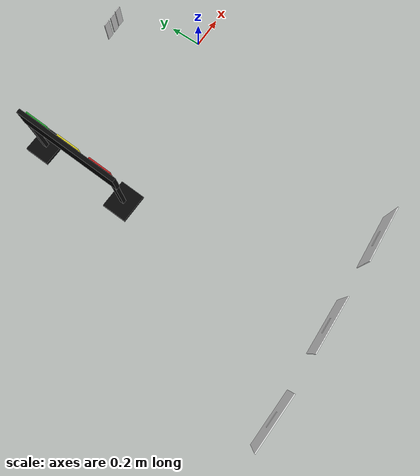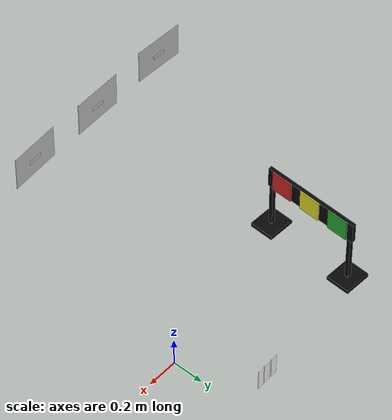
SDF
<sdf version="1.7">
 <world name="competition_world">
  <model name="traffic_light_1">
   <static>true</static>
   <pose>-1.110000 0.067000 0.035000 0 -0 1.527000</pose>
   <link name="signal">
    <visual name="lamp_housing">
     <pose>0 0 0.410 0 0 0</pose>
     <geometry><box><size>0.640 0.025 0.140</size></box></geometry>
     <material><ambient>0.015 0.015 0.015 1</ambient><diffuse>0.03 0.03 0.03 1</diffuse></material>
    </visual>
    <collision name="lamp_housing_collision">
     <pose>0 0 0.410 0 0 0</pose>
     <geometry><box><size>0.640 0.025 0.140</size></box></geometry>
    </collision>
    <visual name="left_support">
     <pose>-0.295 0 0.170 0 0 0</pose>
     <geometry><box><size>0.025 0.025 0.340</size></box></geometry>
     <material><ambient>0.015 0.015 0.015 1</ambient><diffuse>0.03 0.03 0.03 1</diffuse></material>
    </visual>
    <visual name="right_support">
     <pose>0.295 0 0.170 0 0 0</pose>
     <geometry><box><size>0.025 0.025 0.340</size></box></geometry>
     <material><ambient>0.015 0.015 0.015 1</ambient><diffuse>0.03 0.03 0.03 1</diffuse></material>
    </visual>
    <collision name="left_support_collision">
     <pose>-0.295 0 0.170 0 0 0</pose>
     <geometry><box><size>0.025 0.025 0.340</size></box></geometry>
    </collision>
    <collision name="right_support_collision">
     <pose>0.295 0 0.170 0 0 0</pose>
     <geometry><box><size>0.025 0.025 0.340</size></box></geometry>
    </collision>
    <visual name="left_foot">
     <pose>-0.295 0 0.0125 0 0 0</pose>
     <geometry><box><size>0.160 0.180 0.025</size></box></geometry>
     <material><ambient>0.015 0.015 0.015 1</ambient><diffuse>0.03 0.03 0.03 1</diffuse></material>
    </visual>
    <visual name="right_foot">
     <pose>0.295 0 0.0125 0 0 0</pose>
     <geometry><box><size>0.160 0.180 0.025</size></box></geometry>
     <material><ambient>0.015 0.015 0.015 1</ambient><diffuse>0.03 0.03 0.03 1</diffuse></material>
    </visual>
    <collision name="left_foot_collision">
     <pose>-0.295 0 0.0125 0 0 0</pose>
     <geometry><box><size>0.160 0.180 0.025</size></box></geometry>
    </collision>
    <collision name="right_foot_collision">
     <pose>0.295 0 0.0125 0 0 0</pose>
     <geometry><box><size>0.160 0.180 0.025</size></box></geometry>
    </collision>
    <visual name="red_lamp">
     <pose>-0.210 -0.018 0.410 0 0 0</pose>
     <geometry><box><size>0.140 0.008 0.140</size></box></geometry>
     <material>
      <script>
       <uri>file:///root/traffic_light/materials/scripts</uri>
       <uri>file:///root/traffic_light/materials/textures</uri>
       <name>TrafficLight/RedOn</name>
      </script>
     </material>
    </visual>
    <visual name="yellow_lamp">
     <pose>0 -0.018 0.410 0 0 0</pose>
     <geometry><box><size>0.140 0.008 0.140</size></box></geometry>
     <material>
      <script>
       <uri>file:///root/traffic_light/materials/scripts</uri>
       <uri>file:///root/traffic_light/materials/textures</uri>
       <name>TrafficLight/YellowOff</name>
      </script>
     </material>
    </visual>
    <visual name="green_lamp">
     <pose>0.210 -0.018 0.410 0 0 0</pose>
     <geometry><box><size>0.140 0.008 0.140</size></box></geometry>
     <material>
      <script>
       <uri>file:///root/traffic_light/materials/scripts</uri>
       <uri>file:///root/traffic_light/materials/textures</uri>
       <name>TrafficLight/GreenOff</name>
      </script>
     </material>
    </visual>
   </link>
  </model>
  <model name="person_standee_03">
   <pose>-0.284125268 0.484067470 0.035000000 0 0 0.000000000</pose>
   <static>1</static>
   <pose>-0.284125268 0.484067470 0.035000000 0 0 0.000000000</pose>
   <link name="standee">
    <visual name="standee_board">
     <pose>0 0 0.075 0 -0 0</pose>
     <geometry><box><size>0.045 0.005 0.15</size></box></geometry>
     <material><ambient>0.82 0.82 0.82 1</ambient><diffuse>0.92 0.92 0.92 1</diffuse></material>
    </visual>
    <visual name="person_image_front">
     <pose>0 -0.00255 0.075 0 -0 0</pose>
     <geometry><box><size>0.045 0.0001 0.15</size></box></geometry>
     <material>
      <script>
       <uri>file:///root/person_standees/materials/scripts</uri>
       <uri>file:///root/person_standees/materials/textures</uri>
       <name>PersonStandee/Person03</name>
      </script>
     </material>
    </visual>
    <collision name="collision">
     <pose>0 0 0.075 0 -0 0</pose>
     <geometry><box><size>0.045 0.005 0.15</size></box></geometry>
    </collision>
   </link>
  </model>
  <model name="person_standee_09">
   <pose>-0.223586217 0.484632939 0.035000000 0 0 0.000000000</pose>
   <static>1</static>
   <pose>-0.223586217 0.484632939 0.035000000 0 0 0.000000000</pose>
   <link name="standee">
    <visual name="standee_board">
     <pose>0 0 0.075 0 -0 0</pose>
     <geometry><box><size>0.045 0.005 0.15</size></box></geometry>
     <material><ambient>0.82 0.82 0.82 1</ambient><diffuse>0.92 0.92 0.92 1</diffuse></material>
    </visual>
    <visual name="person_image_front">
     <pose>0 -0.00255 0.075 0 -0 0</pose>
     <geometry><box><size>0.045 0.0001 0.15</size></box></geometry>
     <material>
      <script>
       <uri>file:///root/person_standees/materials/scripts</uri>
       <uri>file:///root/person_standees/materials/textures</uri>
       <name>PersonStandee/Person09</name>
      </script>
     </material>
    </visual>
    <collision name="collision">
     <pose>0 0 0.075 0 -0 0</pose>
     <geometry><box><size>0.045 0.005 0.15</size></box></geometry>
    </collision>
   </link>
  </model>
  <model name="person_standee_16">
   <pose>-0.170610875 0.487289608 0.035000000 0 0 0.000000000</pose>
   <static>1</static>
   <pose>-0.170610875 0.487289608 0.035000000 0 0 0.000000000</pose>
   <link name="standee">
    <visual name="standee_board">
     <pose>0 0 0.075 0 0 0</pose>
     <geometry><box><size>0.045 0.005 0.15</size></box></geometry>
     <material><ambient>0.82 0.82 0.82 1</ambient><diffuse>0.92 0.92 0.92 1</diffuse></material>
    </visual>
    <visual name="person_image_front">
     <pose>0 -0.00255 0.075 0 0 0</pose>
     <geometry><box><size>0.045 0.0001 0.15</size></box></geometry>
     <material>
      <script>
       <uri>file:///root/person_standees/materials/scripts</uri>
       <uri>file:///root/person_standees/materials/textures</uri>
       <name>PersonStandee/Person16</name>
      </script>
     </material>
    </visual>
    <collision name="collision">
     <pose>0 0 0.075 0 0 0</pose>
     <geometry><box><size>0.045 0.005 0.15</size></box></geometry>
    </collision>
   </link>
  </model>
  <model name="car_standee_plate_1">
   <pose>-0.525000000 -1.552000000 0.035000000 0 0 -3.087000000</pose>
   <static>true</static>
   <link name="car_board">
    <visual name="background_board">
     <pose>0 0 0.125 0 0 0</pose>
     <geometry><box><size>0.345 0.005 0.25</size></box></geometry>
     <material><ambient>1 1 1 1</ambient><diffuse>1 1 1 1</diffuse></material>
    </visual>
    <visual name="car_image_front">
     <pose>0 -0.00255 0.125 0 0 0</pose>
     <geometry><box><size>0.345 0.0001 0.25</size></box></geometry>
     <material>
      <script>
       <uri>file:///root/car_standees/materials/scripts</uri>
       <uri>file:///root/car_standees/materials/textures</uri>
       <name>CarStandee/Background</name>
      </script>
     </material>
    </visual>
    <visual name="license_plate_front">
     <pose>0 -0.00265 0.112 0 0 0</pose>
     <geometry><box><size>0.095 0.0001 0.03</size></box></geometry>
     <material>
      <script>
       <uri>file:///root/car_standees/materials/scripts</uri>
       <uri>file:///root/car_standees/materials/textures</uri>
       <name>CarStandee/Plate1</name>
      </script>
     </material>
    </visual>
    <collision name="collision">
     <pose>0 0 0.125 0 0 0</pose>
     <geometry><box><size>0.345 0.005 0.25</size></box></geometry>
    </collision>
   </link>
  </model>
  <model name="car_standee_plate_2">
   <pose>-1.088000000 -1.565000000 0.035000000 0 0 -3.121000000</pose>
   <static>true</static>
   <link name="car_board">
    <visual name="background_board">
     <pose>0 0 0.125 0 0 0</pose>
     <geometry><box><size>0.345 0.005 0.25</size></box></geometry>
     <material><ambient>1 1 1 1</ambient><diffuse>1 1 1 1</diffuse></material>
    </visual>
    <visual name="car_image_front">
     <pose>0 -0.00255 0.125 0 0 0</pose>
     <geometry><box><size>0.345 0.0001 0.25</size></box></geometry>
     <material>
      <script>
       <uri>file:///root/car_standees/materials/scripts</uri>
       <uri>file:///root/car_standees/materials/textures</uri>
       <name>CarStandee/Background</name>
      </script>
     </material>
    </visual>
    <visual name="license_plate_front">
     <pose>0 -0.00265 0.112 0 0 0</pose>
     <geometry><box><size>0.095 0.0001 0.03</size></box></geometry>
     <material>
      <script>
       <uri>file:///root/car_standees/materials/scripts</uri>
       <uri>file:///root/car_standees/materials/textures</uri>
       <name>CarStandee/Plate2</name>
      </script>
     </material>
    </visual>
    <collision name="collision">
     <pose>0 0 0.125 0 0 0</pose>
     <geometry><box><size>0.345 0.005 0.25</size></box></geometry>
    </collision>
   </link>
  </model>
  <model name="car_standee_plate_3">
   <pose>-1.653000000 -1.573000000 0.035000000 0 0 3.093000000</pose>
   <static>true</static>
   <link name="car_board">
    <visual name="background_board">
     <pose>0 0 0.125 0 0 0</pose>
     <geometry><box><size>0.345 0.005 0.25</size></box></geometry>
     <material><ambient>1 1 1 1</ambient><diffuse>1 1 1 1</diffuse></material>
    </visual>
    <visual name="car_image_front">
     <pose>0 -0.00255 0.125 0 0 0</pose>
     <geometry><box><size>0.345 0.0001 0.25</size></box></geometry>
     <material>
      <script>
       <uri>file:///root/car_standees/materials/scripts</uri>
       <uri>file:///root/car_standees/materials/textures</uri>
       <name>CarStandee/Background</name>
      </script>
     </material>
    </visual>
    <visual name="license_plate_front">
     <pose>0 -0.00265 0.112 0 0 0</pose>
     <geometry><box><size>0.095 0.0001 0.03</size></box></geometry>
     <material>
      <script>
       <uri>file:///root/car_standees/materials/scripts</uri>
       <uri>file:///root/car_standees/materials/textures</uri>
       <name>CarStandee/Plate3</name>
      </script>
     </material>
    </visual>
    <collision name="collision">
     <pose>0 0 0.125 0 0 0</pose>
     <geometry><box><size>0.345 0.005 0.25</size></box></geometry>
    </collision>
   </link>
  </model>
 </world>
</sdf>
